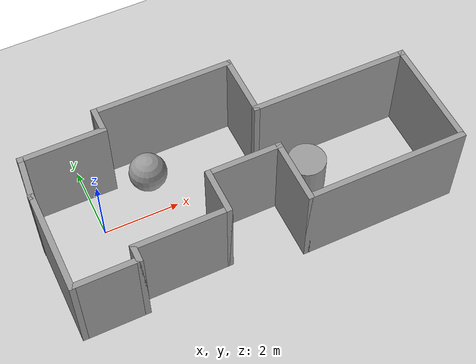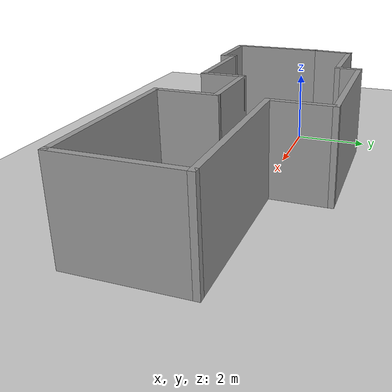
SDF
<sdf version="1.7">
 <world name="default">
  <light name="sun" type="directional">
   <pose>0 0 10 0 -0 0</pose>
   <diffuse>0.8 0.8 0.8 1</diffuse>
   <specular>0.2 0.2 0.2 1</specular>
   <attenuation>
    <range>1000</range>
    <constant>0.9</constant>
    <linear>0.01</linear>
    <quadratic>0.001</quadratic>
   </attenuation>
   <direction>-0.5 0.1 -0.9</direction>
   <spot><inner_angle>0</inner_angle><outer_angle>0</outer_angle><falloff>0</falloff></spot>
  </light>
  <model name="ground_plane">
   <static>1</static>
   <link name="link">
    <collision name="collision">
     <geometry><plane><normal>0 0 1</normal><size>100 100</size></plane></geometry>
     <surface>
      <contact><collide_bitmask>65535</collide_bitmask></contact>
      <friction><ode><mu>100</mu><mu2>50</mu2></ode></friction>
     </surface>
    </collision>
    <visual name="visual">
     <cast_shadows>0</cast_shadows>
     <geometry><plane><normal>0 0 1</normal><size>100 100</size></plane></geometry>
     <material>
      <script><uri>file://media/materials/scripts/gazebo.material</uri><name>Gazebo/Grey</name></script>
     </material>
    </visual>
   </link>
  </model>
  <gravity>0 0 -9.8</gravity>
  <magnetic_field>6e-06 2.3e-05 -4.2e-05</magnetic_field>
  <atmosphere type="adiabatic"/>
  <physics type="ode">
   <max_step_size>0.001</max_step_size>
   <real_time_factor>1</real_time_factor>
   <real_time_update_rate>1000</real_time_update_rate>
  </physics>
  <scene><ambient>0.4 0.4 0.4 1</ambient><background>0.7 0.7 0.7 1</background><shadows>1</shadows></scene>
  <spherical_coordinates>
   <surface_model>EARTH_WGS84</surface_model>
   <latitude_deg>0</latitude_deg>
   <longitude_deg>0</longitude_deg>
   <elevation>0</elevation>
   <heading_deg>0</heading_deg>
  </spherical_coordinates>
  <model name="my_room">
   <pose>3.44861 -0.414915 0 0 -0 0</pose>
   <link name="Wall_0">
    <collision name="Wall_0_Collision">
     <geometry><box><size>0.16 0.15 2.5</size></box></geometry>
     <pose>0 0 1.25 0 -0 0</pose>
    </collision>
    <visual name="Wall_0_Visual">
     <pose>0 0 1.25 0 -0 0</pose>
     <geometry><box><size>0.16 0.15 2.5</size></box></geometry>
     <material>
      <script><uri>file://media/materials/scripts/gazebo.material</uri><name>Gazebo/Grey</name></script>
      <ambient>1 1 1 1</ambient>
     </material>
     <meta><layer>0</layer></meta>
    </visual>
    <pose>-4.95 0.525 0 0 -0 0</pose>
   </link>
   <link name="Wall_1">
    <collision name="Wall_1_Collision">
     <geometry><box><size>2.75 0.15 2.5</size></box></geometry>
     <pose>0 0 1.25 0 -0 0</pose>
    </collision>
    <visual name="Wall_1_Visual">
     <pose>0 0 1.25 0 -0 0</pose>
     <geometry><box><size>2.75 0.15 2.5</size></box></geometry>
     <material>
      <script><uri>file://media/materials/scripts/gazebo.material</uri><name>Gazebo/Grey</name></script>
      <ambient>1 1 1 1</ambient>
     </material>
     <meta><layer>0</layer></meta>
    </visual>
    <pose>-4.945 -0.775 0 0 -0 -1.5708</pose>
   </link>
   <link name="Wall_10">
    <collision name="Wall_10_Collision">
     <geometry><box><size>4.25 0.15 2.5</size></box></geometry>
     <pose>0 0 1.25 0 -0 0</pose>
    </collision>
    <visual name="Wall_10_Visual">
     <pose>0 0 1.25 0 -0 0</pose>
     <geometry><box><size>4.25 0.15 2.5</size></box></geometry>
     <material>
      <script><uri>file://media/materials/scripts/gazebo.material</uri><name>Gazebo/Grey</name></script>
      <ambient>1 1 1 1</ambient>
     </material>
     <meta><layer>0</layer></meta>
    </visual>
    <pose>2.905 0.625 0 0 -0 3.14159</pose>
   </link>
   <link name="Wall_11">
    <collision name="Wall_11_Collision">
     <geometry><box><size>1.75 0.15 2.5</size></box></geometry>
     <pose>0 0 1.25 0 -0 0</pose>
    </collision>
    <visual name="Wall_11_Visual">
     <pose>0 0 1.25 0 -0 0</pose>
     <geometry><box><size>1.75 0.15 2.5</size></box></geometry>
     <material>
      <script><uri>file://media/materials/scripts/gazebo.material</uri><name>Gazebo/Grey</name></script>
      <ambient>1 1 1 1</ambient>
     </material>
     <meta><layer>0</layer></meta>
    </visual>
    <pose>0.855 1.425 0 0 -0 1.5708</pose>
   </link>
   <link name="Wall_12">
    <collision name="Wall_12_Collision">
     <geometry><box><size>3.75 0.15 2.5</size></box></geometry>
     <pose>0 0 1.25 0 -0 0</pose>
    </collision>
    <visual name="Wall_12_Visual">
     <pose>0 0 1.25 0 -0 0</pose>
     <geometry><box><size>3.75 0.15 2.5</size></box></geometry>
     <material>
      <script><uri>file://media/materials/scripts/gazebo.material</uri><name>Gazebo/Grey</name></script>
      <ambient>1 1 1 1</ambient>
     </material>
     <meta><layer>0</layer></meta>
    </visual>
    <pose>-0.945 2.225 0 0 -0 3.14159</pose>
   </link>
   <link name="Wall_13">
    <collision name="Wall_13_Collision">
     <geometry><box><size>0.75 0.15 2.5</size></box></geometry>
     <pose>0 0 1.25 0 -0 0</pose>
    </collision>
    <visual name="Wall_13_Visual">
     <pose>0 0 1.25 0 -0 0</pose>
     <geometry><box><size>0.75 0.15 2.5</size></box></geometry>
     <material>
      <script><uri>file://media/materials/scripts/gazebo.material</uri><name>Gazebo/Grey</name></script>
      <ambient>1 1 1 1</ambient>
     </material>
     <meta><layer>0</layer></meta>
    </visual>
    <pose>-2.745 1.925 0 0 -0 -1.5708</pose>
   </link>
   <link name="Wall_14">
    <collision name="Wall_14_Collision">
     <geometry><box><size>2.25 0.15 2.5</size></box></geometry>
     <pose>0 0 1.25 0 -0 0</pose>
    </collision>
    <visual name="Wall_14_Visual">
     <pose>0 0 1.25 0 -0 0</pose>
     <geometry><box><size>2.25 0.15 2.5</size></box></geometry>
     <material>
      <script><uri>file://media/materials/scripts/gazebo.material</uri><name>Gazebo/Grey</name></script>
      <ambient>1 1 1 1</ambient>
     </material>
     <meta><layer>0</layer></meta>
    </visual>
    <pose>-3.795 1.625 0 0 -0 3.14159</pose>
   </link>
   <link name="Wall_15">
    <collision name="Wall_15_Collision">
     <geometry><box><size>0.16 0.15 2.5</size></box></geometry>
     <pose>0 0 1.25 0 -0 0</pose>
    </collision>
    <visual name="Wall_15_Visual">
     <pose>0 0 1.25 0 -0 0</pose>
     <geometry><box><size>0.16 0.15 2.5</size></box></geometry>
     <material>
      <script><uri>file://media/materials/scripts/gazebo.material</uri><name>Gazebo/Grey</name></script>
      <ambient>1 1 1 1</ambient>
     </material>
     <meta><layer>0</layer></meta>
    </visual>
    <pose>-4.84 1.625 0 0 -0 0</pose>
   </link>
   <link name="Wall_16">
    <collision name="Wall_16_Collision">
     <geometry><box><size>1.25549 0.15 2.5</size></box></geometry>
     <pose>0 0 1.25 0 -0 0</pose>
    </collision>
    <visual name="Wall_16_Visual">
     <pose>0 0 1.25 0 -0 0</pose>
     <geometry><box><size>1.25549 0.15 2.5</size></box></geometry>
     <material>
      <script><uri>file://media/materials/scripts/gazebo.material</uri><name>Gazebo/Grey</name></script>
      <ambient>1 1 1 1</ambient>
     </material>
     <meta><layer>0</layer></meta>
    </visual>
    <pose>-4.89 1.075 0 0 -0 -1.67047</pose>
   </link>
   <link name="Wall_2">
    <collision name="Wall_2_Collision">
     <geometry><box><size>1.75 0.15 2.5</size></box></geometry>
     <pose>0 0 1.25 0 -0 0</pose>
    </collision>
    <visual name="Wall_2_Visual">
     <pose>0 0 1.25 0 -0 0</pose>
     <geometry><box><size>1.75 0.15 2.5</size></box></geometry>
     <material>
      <script><uri>file://media/materials/scripts/gazebo.material</uri><name>Gazebo/Grey</name></script>
      <ambient>1 1 1 1</ambient>
     </material>
     <meta><layer>0</layer></meta>
    </visual>
    <pose>-4.145 -2.075 0 0 -0 0</pose>
   </link>
   <link name="Wall_3">
    <collision name="Wall_3_Collision">
     <geometry><box><size>0.5 0.15 2.5</size></box></geometry>
     <pose>0 0 1.25 0 -0 0</pose>
    </collision>
    <visual name="Wall_3_Visual">
     <pose>0 0 1.25 0 -0 0</pose>
     <geometry><box><size>0.5 0.15 2.5</size></box></geometry>
     <material>
      <script><uri>file://media/materials/scripts/gazebo.material</uri><name>Gazebo/Grey</name></script>
      <ambient>1 1 1 1</ambient>
     </material>
     <meta><layer>0</layer></meta>
    </visual>
    <pose>-3.345 -1.9 0 0 -0 1.5708</pose>
   </link>
   <link name="Wall_4">
    <collision name="Wall_4_Collision">
     <geometry><box><size>2.5 0.15 2.5</size></box></geometry>
     <pose>0 0 1.25 0 -0 0</pose>
    </collision>
    <visual name="Wall_4_Visual">
     <pose>0 0 1.25 0 -0 0</pose>
     <geometry><box><size>2.5 0.15 2.5</size></box></geometry>
     <material>
      <script><uri>file://media/materials/scripts/gazebo.material</uri><name>Gazebo/Grey</name></script>
      <ambient>1 1 1 1</ambient>
     </material>
     <meta><layer>0</layer></meta>
    </visual>
    <pose>-2.17 -1.725 0 0 -0 0</pose>
   </link>
   <link name="Wall_5">
    <collision name="Wall_5_Collision">
     <geometry><box><size>1.25 0.15 2.5</size></box></geometry>
     <pose>0 0 1.25 0 -0 0</pose>
    </collision>
    <visual name="Wall_5_Visual">
     <pose>0 0 1.25 0 -0 0</pose>
     <geometry><box><size>1.25 0.15 2.5</size></box></geometry>
     <material>
      <script><uri>file://media/materials/scripts/gazebo.material</uri><name>Gazebo/Grey</name></script>
      <ambient>1 1 1 1</ambient>
     </material>
     <meta><layer>0</layer></meta>
    </visual>
    <pose>-0.995 -1.175 0 0 -0 1.5708</pose>
   </link>
   <link name="Wall_6">
    <collision name="Wall_6_Collision">
     <geometry><box><size>2 0.15 2.5</size></box></geometry>
     <pose>0 0 1.25 0 -0 0</pose>
    </collision>
    <visual name="Wall_6_Visual">
     <pose>0 0 1.25 0 -0 0</pose>
     <geometry><box><size>2 0.15 2.5</size></box></geometry>
     <material>
      <script><uri>file://media/materials/scripts/gazebo.material</uri><name>Gazebo/Grey</name></script>
      <ambient>1 1 1 1</ambient>
     </material>
     <meta><layer>0</layer></meta>
    </visual>
    <pose>-0.07 -0.625 0 0 -0 0</pose>
   </link>
   <link name="Wall_7">
    <collision name="Wall_7_Collision">
     <geometry><box><size>1.75 0.15 2.5</size></box></geometry>
     <pose>0 0 1.25 0 -0 0</pose>
    </collision>
    <visual name="Wall_7_Visual">
     <pose>0 0 1.25 0 -0 0</pose>
     <geometry><box><size>1.75 0.15 2.5</size></box></geometry>
     <material>
      <script><uri>file://media/materials/scripts/gazebo.material</uri><name>Gazebo/Grey</name></script>
      <ambient>1 1 1 1</ambient>
     </material>
     <meta><layer>0</layer></meta>
    </visual>
    <pose>0.855 -1.425 0 0 -0 -1.5708</pose>
   </link>
   <link name="Wall_8">
    <collision name="Wall_8_Collision">
     <geometry><box><size>4.25 0.15 2.5</size></box></geometry>
     <pose>0 0 1.25 0 -0 0</pose>
    </collision>
    <visual name="Wall_8_Visual">
     <pose>0 0 1.25 0 -0 0</pose>
     <geometry><box><size>4.25 0.15 2.5</size></box></geometry>
     <material>
      <script><uri>file://media/materials/scripts/gazebo.material</uri><name>Gazebo/Grey</name></script>
      <ambient>1 1 1 1</ambient>
     </material>
     <meta><layer>0</layer></meta>
    </visual>
    <pose>2.905 -2.225 0 0 -0 0</pose>
   </link>
   <link name="Wall_9">
    <collision name="Wall_9_Collision">
     <geometry><box><size>3 0.15 2.5</size></box></geometry>
     <pose>0 0 1.25 0 -0 0</pose>
    </collision>
    <visual name="Wall_9_Visual">
     <pose>0 0 1.25 0 -0 0</pose>
     <geometry><box><size>3 0.15 2.5</size></box></geometry>
     <material>
      <script><uri>file://media/materials/scripts/gazebo.material</uri><name>Gazebo/Grey</name></script>
      <ambient>1 1 1 1</ambient>
     </material>
     <meta><layer>0</layer></meta>
    </visual>
    <pose>4.955 -0.8 0 0 -0 1.5708</pose>
   </link>
   <static>1</static>
  </model>
  <model name="unit_sphere">
   <pose>1.59468 0.93497 0.5 0 -0 0</pose>
   <link name="link">
    <inertial>
     <mass>1</mass>
     <inertia><ixx>0.1</ixx><ixy>0</ixy><ixz>0</ixz><iyy>0.1</iyy><iyz>0</iyz><izz>0.1</izz></inertia>
    </inertial>
    <collision name="collision"><geometry><sphere><radius>0.5</radius></sphere></geometry></collision>
    <visual name="visual">
     <geometry><sphere><radius>0.5</radius></sphere></geometry>
     <material>
      <script><name>Gazebo/Grey</name><uri>file://media/materials/scripts/gazebo.material</uri></script>
     </material>
    </visual>
   </link>
  </model>
  <model name="unit_cylinder">
   <pose>5.2791 -0.782124 0.499997 3e-06 4e-06 -0</pose>
   <link name="link">
    <inertial>
     <mass>1</mass>
     <inertia><ixx>0.145833</ixx><ixy>0</ixy><ixz>0</ixz><iyy>0.145833</iyy><iyz>0</iyz><izz>0.125</izz></inertia>
    </inertial>
    <collision name="collision">
     <geometry><cylinder><radius>0.5</radius><length>1</length></cylinder></geometry>
    </collision>
    <visual name="visual">
     <geometry><cylinder><radius>0.5</radius><length>1</length></cylinder></geometry>
     <material>
      <script><name>Gazebo/Grey</name><uri>file://media/materials/scripts/gazebo.material</uri></script>
     </material>
    </visual>
   </link>
  </model>
 </world>
</sdf>
